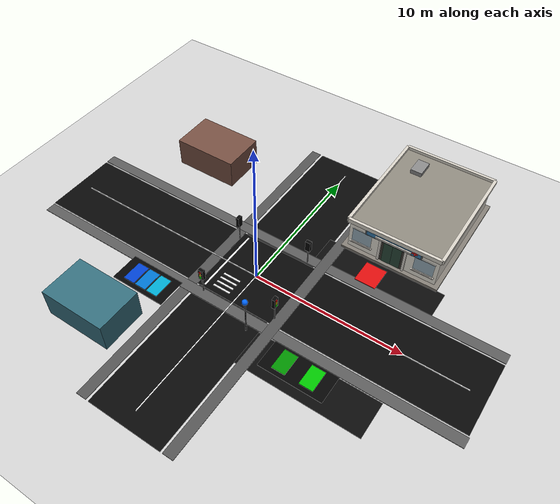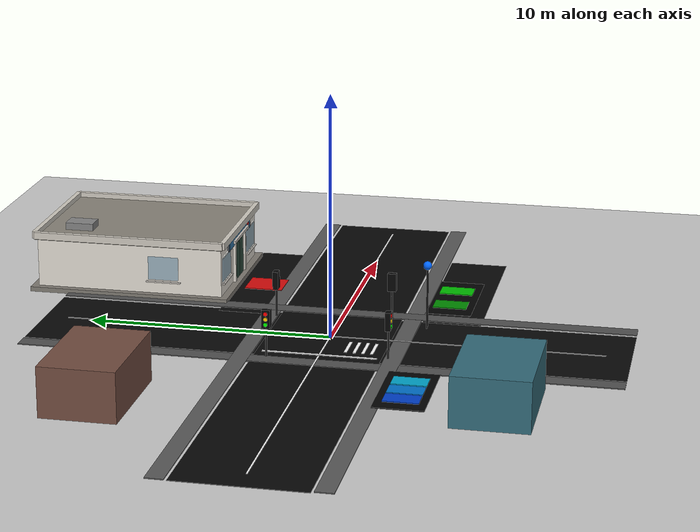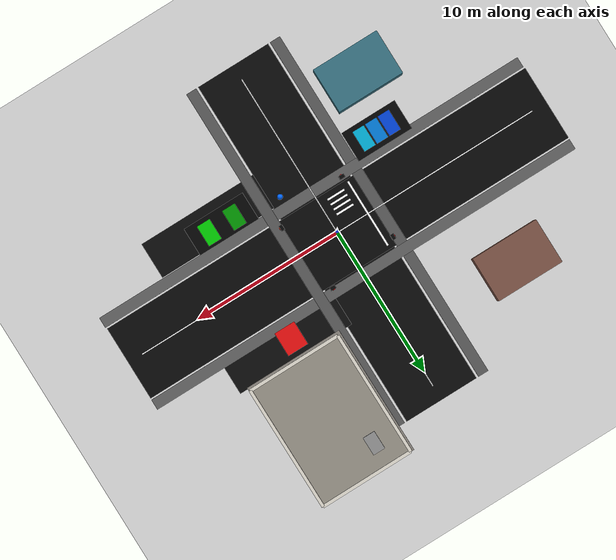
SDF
<sdf version="1.7">
 <world name="v2x_city_world">
  <light name="sun" type="directional">
   <pose>0 0 10 0 -0 0</pose>
   <diffuse>0.8 0.8 0.8 1</diffuse>
   <specular>0.2 0.2 0.2 1</specular>
   <attenuation>
    <range>1000</range>
    <constant>0.9</constant>
    <linear>0.01</linear>
    <quadratic>0.001</quadratic>
   </attenuation>
   <direction>-0.5 0.1 -0.9</direction>
   <spot><inner_angle>0</inner_angle><outer_angle>0</outer_angle><falloff>0</falloff></spot>
  </light>
  <model name="ground_plane">
   <static>1</static>
   <link name="link">
    <collision name="collision">
     <geometry><plane><normal>0 0 1</normal><size>100 100</size></plane></geometry>
     <surface><friction><ode><mu>100</mu><mu2>50</mu2></ode></friction></surface>
    </collision>
    <visual name="visual">
     <cast_shadows>0</cast_shadows>
     <geometry><plane><normal>0 0 1</normal><size>100 100</size></plane></geometry>
     <material>
      <script><uri>file://media/materials/scripts/gazebo.material</uri><name>Gazebo/Grey</name></script>
     </material>
    </visual>
   </link>
  </model>
  <model name="main_horizontal_road">
   <static>1</static>
   <pose>-0.011249 0.047151 0.022517 0 -0 0</pose>
   <link name="link">
    <visual name="road">
     <geometry><box><size>30 5 0.02</size></box></geometry>
     <material><ambient>0.025 0.025 0.025 1</ambient><diffuse>0.025 0.025 0.025 1</diffuse></material>
    </visual>
   </link>
  </model>
  <model name="main_vertical_road">
   <static>1</static>
   <pose>0 0 0.012 0 -0 0</pose>
   <link name="link">
    <visual name="road">
     <geometry><box><size>5 24 0.02</size></box></geometry>
     <material><ambient>0.03 0.03 0.03 1</ambient><diffuse>0.03 0.03 0.03 1</diffuse></material>
    </visual>
   </link>
  </model>
  <model name="office_access_road">
   <static>1</static>
   <pose>6.48916 -4.50995 0.014 0 -0 0</pose>
   <link name="link">
    <visual name="road">
     <geometry><box><size>8 2.4 0.02</size></box></geometry>
     <material><ambient>0.035 0.035 0.035 1</ambient><diffuse>0.035 0.035 0.035 1</diffuse></material>
    </visual>
   </link>
  </model>
  <model name="hospital_access_road">
   <static>1</static>
   <pose>6.2 4 0.014 0 -0 0</pose>
   <link name="link">
    <visual name="road">
     <geometry><box><size>8 2.4 0.02</size></box></geometry>
     <material><ambient>0.035 0.035 0.035 1</ambient><diffuse>0.035 0.035 0.035 1</diffuse></material>
    </visual>
   </link>
  </model>
  <model name="sidewalk_north">
   <static>1</static>
   <pose>0 3 0.035 0 -0 0</pose>
   <link name="link">
    <visual name="sidewalk">
     <geometry><box><size>30 0.7 0.04</size></box></geometry>
     <material><ambient>0.35 0.35 0.35 1</ambient><diffuse>0.35 0.35 0.35 1</diffuse></material>
    </visual>
   </link>
  </model>
  <model name="sidewalk_south">
   <static>1</static>
   <pose>0.051873 -2.90708 0.035 0 -0 0</pose>
   <link name="link">
    <visual name="sidewalk">
     <geometry><box><size>30 0.7 0.04</size></box></geometry>
     <material><ambient>0.35 0.35 0.35 1</ambient><diffuse>0.35 0.35 0.35 1</diffuse></material>
    </visual>
   </link>
  </model>
  <model name="sidewalk_east">
   <static>1</static>
   <pose>3 0 0.036 0 -0 0</pose>
   <link name="link">
    <visual name="sidewalk">
     <geometry><box><size>0.7 24 0.04</size></box></geometry>
     <material><ambient>0.32 0.32 0.32 1</ambient><diffuse>0.32 0.32 0.32 1</diffuse></material>
    </visual>
   </link>
  </model>
  <model name="sidewalk_west">
   <static>1</static>
   <pose>-3 0 0.026544 0 -0 0</pose>
   <link name="link">
    <visual name="sidewalk">
     <geometry><box><size>0.7 24 0.04</size></box></geometry>
     <material><ambient>0.32 0.32 0.32 1</ambient><diffuse>0.32 0.32 0.32 1</diffuse></material>
    </visual>
   </link>
  </model>
  <model name="horizontal_lane_marking">
   <static>1</static>
   <pose>0 0 0.055 0 -0 0</pose>
   <link name="link">
    <visual name="visual">
     <geometry><box><size>28 0.06 0.02</size></box></geometry>
     <material><ambient>1 1 1 1</ambient><diffuse>1 1 1 1</diffuse></material>
    </visual>
   </link>
  </model>
  <model name="vertical_lane_marking">
   <static>1</static>
   <pose>0 0 0.056 0 -0 0</pose>
   <link name="link">
    <visual name="visual">
     <geometry><box><size>0.06 22 0.02</size></box></geometry>
     <material><ambient>1 1 1 1</ambient><diffuse>1 1 1 1</diffuse></material>
    </visual>
   </link>
  </model>
  <model name="main_stop_line">
   <static>1</static>
   <pose>-2.2 0 0.07 0 -0 0</pose>
   <link name="link">
    <visual name="visual">
     <geometry><box><size>0.12 4.6 0.025</size></box></geometry>
     <material><ambient>1 1 1 1</ambient><diffuse>1 1 1 1</diffuse></material>
    </visual>
   </link>
  </model>
  <model name="crosswalk_south">
   <static>1</static>
   <pose>-1.15 -2 0.075 0 -0 0</pose>
   <link name="link">
    <visual name="stripe1">
     <geometry><box><size>1.2 0.12 0.025</size></box></geometry>
     <material><ambient>1 1 1 1</ambient><diffuse>1 1 1 1</diffuse></material>
    </visual>
    <visual name="stripe2">
     <pose>0 0.35 0 0 -0 0</pose>
     <geometry><box><size>1.2 0.12 0.025</size></box></geometry>
     <material><ambient>1 1 1 1</ambient><diffuse>1 1 1 1</diffuse></material>
    </visual>
    <visual name="stripe3">
     <pose>0 0.7 0 0 -0 0</pose>
     <geometry><box><size>1.2 0.12 0.025</size></box></geometry>
     <material><ambient>1 1 1 1</ambient><diffuse>1 1 1 1</diffuse></material>
    </visual>
    <visual name="stripe4">
     <pose>0 1.05 0 0 -0 0</pose>
     <geometry><box><size>1.2 0.12 0.025</size></box></geometry>
     <material><ambient>1 1 1 1</ambient><diffuse>1 1 1 1</diffuse></material>
    </visual>
   </link>
  </model>
  <model name="hospital_complex">
   <static>1</static>
   <pose>6.34604 8.76438 1.13843 0 -0 0</pose>
   <link name="link">
    <visual name="main">
     <geometry><box><size>5.5 3.2 2.5</size></box></geometry>
     <material><ambient>0.82 0.86 0.9 1</ambient><diffuse>0.82 0.86 0.9 1</diffuse></material>
    </visual>
    <visual name="entrance">
     <pose>-1.2 -1.65 -0.45 0 -0 0</pose>
     <geometry><box><size>1.3 0.25 0.7</size></box></geometry>
     <material><ambient>0.15 0.35 0.85 1</ambient><diffuse>0.15 0.35 0.85 1</diffuse></material>
    </visual>
    <visual name="cross_vertical">
     <pose>0 -1.65 0.65 0 -0 0</pose>
     <geometry><box><size>0.3 0.08 1.1</size></box></geometry>
     <material><ambient>1 0 0 1</ambient><diffuse>1 0 0 1</diffuse></material>
    </visual>
    <visual name="cross_horizontal">
     <pose>0 -1.7 0.65 0 -0 0</pose>
     <geometry><box><size>1.1 0.08 0.3</size></box></geometry>
     <material><ambient>1 0 0 1</ambient><diffuse>1 0 0 1</diffuse></material>
    </visual>
   </link>
  </model>
  <model name="residential_block">
   <static>1</static>
   <pose>-8.3 7.1778 1 0 -0 0</pose>
   <link name="link">
    <visual name="main">
     <geometry><box><size>4.5 3 2</size></box></geometry>
     <material><ambient>0.45 0.3 0.25 1</ambient><diffuse>0.45 0.3 0.25 1</diffuse></material>
    </visual>
   </link>
  </model>
  <model name="commercial_block">
   <static>1</static>
   <pose>-6.17553 -7.5559 1 0 -0 0</pose>
   <link name="link">
    <visual name="main">
     <geometry><box><size>4.5 3 2</size></box></geometry>
     <material><ambient>0.2 0.42 0.48 1</ambient><diffuse>0.2 0.42 0.48 1</diffuse></material>
    </visual>
   </link>
  </model>
  <model name="office_parking_zone_O1_O2">
   <static>1</static>
   <pose>5.71745 -4.12842 0.00947 0 -0 0</pose>
   <link name="link">
    <visual name="base">
     <geometry><box><size>4.2 2 0.04</size></box></geometry>
     <material><ambient>0.01 0.01 0.01 1</ambient><diffuse>0.01 0.01 0.01 1</diffuse></material>
    </visual>
    <visual name="slot_o1">
     <pose>-0.9 0 0.04 0 -0 0</pose>
     <geometry><box><size>0.9 1.4 0.04</size></box></geometry>
     <material><ambient>0 0.55 0 1</ambient><diffuse>0 0.55 0 1</diffuse></material>
    </visual>
    <visual name="slot_o2">
     <pose>0.9 0 0.04 0 -0 0</pose>
     <geometry><box><size>0.9 1.4 0.04</size></box></geometry>
     <material><ambient>0 0.75 0 1</ambient><diffuse>0 0.75 0 1</diffuse></material>
    </visual>
   </link>
  </model>
  <model name="hospital_bay_H1">
   <static>1</static>
   <pose>5.8 4 0.07 0 -0 0</pose>
   <link name="link">
    <visual name="base">
     <geometry><box><size>1.4 1.6 0.04</size></box></geometry>
     <material><ambient>0.85 0.05 0.05 1</ambient><diffuse>0.85 0.05 0.05 1</diffuse></material>
    </visual>
   </link>
  </model>
  <model name="commercial_parking_lot">
   <static>1</static>
   <pose>-5.31351 -4 0.07 0 -0 0</pose>
   <link name="link">
    <visual name="base">
     <geometry><box><size>3.8 2 0.04</size></box></geometry>
     <material><ambient>0.01 0.01 0.01 1</ambient><diffuse>0.01 0.01 0.01 1</diffuse></material>
    </visual>
    <visual name="slot1">
     <pose>-0.9 0 0.04 0 -0 0</pose>
     <geometry><box><size>0.8 1.4 0.04</size></box></geometry>
     <material><ambient>0 0.25 0.8 1</ambient><diffuse>0 0.25 0.8 1</diffuse></material>
    </visual>
    <visual name="slot2">
     <pose>0 0 0.04 0 -0 0</pose>
     <geometry><box><size>0.8 1.4 0.04</size></box></geometry>
     <material><ambient>0 0.45 0.8 1</ambient><diffuse>0 0.45 0.8 1</diffuse></material>
    </visual>
    <visual name="slot3">
     <pose>0.9 0 0.04 0 -0 0</pose>
     <geometry><box><size>0.8 1.4 0.04</size></box></geometry>
     <material><ambient>0 0.65 0.8 1</ambient><diffuse>0 0.65 0.8 1</diffuse></material>
    </visual>
   </link>
  </model>
  <model name="traffic_light_south">
   <static>1</static>
   <pose>-2 -2.7 0 0 -0 0</pose>
   <link name="link">
    <visual name="pole">
     <pose>0 0 0.8 0 -0 0</pose>
     <geometry><cylinder><radius>0.04</radius><length>1.6</length></cylinder></geometry>
     <material><ambient>0.1 0.1 0.1 1</ambient><diffuse>0.1 0.1 0.1 1</diffuse></material>
    </visual>
    <visual name="box">
     <pose>0 0 1.6 0 -0 0</pose>
     <geometry><box><size>0.35 0.22 0.75</size></box></geometry>
     <material><ambient>0.02 0.02 0.02 1</ambient><diffuse>0.02 0.02 0.02 1</diffuse></material>
    </visual>
    <visual name="red">
     <pose>0 -0.13 1.82 1.5707 -0 0</pose>
     <geometry><cylinder><radius>0.08</radius><length>0.03</length></cylinder></geometry>
     <material><ambient>1 0 0 1</ambient><diffuse>1 0 0 1</diffuse></material>
    </visual>
    <visual name="yellow">
     <pose>0 -0.13 1.6 1.5707 -0 0</pose>
     <geometry><cylinder><radius>0.08</radius><length>0.03</length></cylinder></geometry>
     <material><ambient>1 0.8 0 1</ambient><diffuse>1 0.8 0 1</diffuse></material>
    </visual>
    <visual name="green">
     <pose>0 -0.13 1.38 1.5707 -0 0</pose>
     <geometry><cylinder><radius>0.08</radius><length>0.03</length></cylinder></geometry>
     <material><ambient>0 1 0 1</ambient><diffuse>0 1 0 1</diffuse></material>
    </visual>
   </link>
  </model>
  <model name="traffic_light_north">
   <static>1</static>
   <pose>2 2.7 0 0 -0 3.1415</pose>
   <link name="link">
    <visual name="pole">
     <pose>0 0 0.8 0 -0 0</pose>
     <geometry><cylinder><radius>0.04</radius><length>1.6</length></cylinder></geometry>
     <material><ambient>0.1 0.1 0.1 1</ambient><diffuse>0.1 0.1 0.1 1</diffuse></material>
    </visual>
    <visual name="box">
     <pose>0 0 1.6 0 -0 0</pose>
     <geometry><box><size>0.35 0.22 0.75</size></box></geometry>
     <material><ambient>0.02 0.02 0.02 1</ambient><diffuse>0.02 0.02 0.02 1</diffuse></material>
    </visual>
    <visual name="red">
     <pose>0 -0.13 1.82 1.5707 -0 0</pose>
     <geometry><cylinder><radius>0.08</radius><length>0.03</length></cylinder></geometry>
     <material><ambient>1 0 0 1</ambient><diffuse>1 0 0 1</diffuse></material>
    </visual>
    <visual name="yellow">
     <pose>0 -0.13 1.6 1.5707 -0 0</pose>
     <geometry><cylinder><radius>0.08</radius><length>0.03</length></cylinder></geometry>
     <material><ambient>1 0.8 0 1</ambient><diffuse>1 0.8 0 1</diffuse></material>
    </visual>
    <visual name="green">
     <pose>0 -0.13 1.38 1.5707 -0 0</pose>
     <geometry><cylinder><radius>0.08</radius><length>0.03</length></cylinder></geometry>
     <material><ambient>0 1 0 1</ambient><diffuse>0 1 0 1</diffuse></material>
    </visual>
   </link>
  </model>
  <model name="traffic_light_east">
   <static>1</static>
   <pose>2.7 -2 0 0 -0 1.5707</pose>
   <link name="link">
    <visual name="pole">
     <pose>0 0 0.8 0 -0 0</pose>
     <geometry><cylinder><radius>0.04</radius><length>1.6</length></cylinder></geometry>
     <material><ambient>0.1 0.1 0.1 1</ambient><diffuse>0.1 0.1 0.1 1</diffuse></material>
    </visual>
    <visual name="box">
     <pose>0 0 1.6 0 -0 0</pose>
     <geometry><box><size>0.35 0.22 0.75</size></box></geometry>
     <material><ambient>0.02 0.02 0.02 1</ambient><diffuse>0.02 0.02 0.02 1</diffuse></material>
    </visual>
    <visual name="red">
     <pose>0 -0.13 1.82 1.5707 -0 0</pose>
     <geometry><cylinder><radius>0.08</radius><length>0.03</length></cylinder></geometry>
     <material><ambient>1 0 0 1</ambient><diffuse>1 0 0 1</diffuse></material>
    </visual>
    <visual name="yellow">
     <pose>0 -0.13 1.6 1.5707 -0 0</pose>
     <geometry><cylinder><radius>0.08</radius><length>0.03</length></cylinder></geometry>
     <material><ambient>1 0.8 0 1</ambient><diffuse>1 0.8 0 1</diffuse></material>
    </visual>
    <visual name="green">
     <pose>0 -0.13 1.38 1.5707 -0 0</pose>
     <geometry><cylinder><radius>0.08</radius><length>0.03</length></cylinder></geometry>
     <material><ambient>0 1 0 1</ambient><diffuse>0 1 0 1</diffuse></material>
    </visual>
   </link>
  </model>
  <model name="traffic_light_west">
   <static>1</static>
   <pose>-2.7 2 0 0 0 -1.5707</pose>
   <link name="link">
    <visual name="pole">
     <pose>0 0 0.8 0 -0 0</pose>
     <geometry><cylinder><radius>0.04</radius><length>1.6</length></cylinder></geometry>
     <material><ambient>0.1 0.1 0.1 1</ambient><diffuse>0.1 0.1 0.1 1</diffuse></material>
    </visual>
    <visual name="box">
     <pose>0 0 1.6 0 -0 0</pose>
     <geometry><box><size>0.35 0.22 0.75</size></box></geometry>
     <material><ambient>0.02 0.02 0.02 1</ambient><diffuse>0.02 0.02 0.02 1</diffuse></material>
    </visual>
    <visual name="red">
     <pose>0 -0.13 1.82 1.5707 -0 0</pose>
     <geometry><cylinder><radius>0.08</radius><length>0.03</length></cylinder></geometry>
     <material><ambient>1 0 0 1</ambient><diffuse>1 0 0 1</diffuse></material>
    </visual>
    <visual name="yellow">
     <pose>0 -0.13 1.6 1.5707 -0 0</pose>
     <geometry><cylinder><radius>0.08</radius><length>0.03</length></cylinder></geometry>
     <material><ambient>1 0.8 0 1</ambient><diffuse>1 0.8 0 1</diffuse></material>
    </visual>
    <visual name="green">
     <pose>0 -0.13 1.38 1.5707 -0 0</pose>
     <geometry><cylinder><radius>0.08</radius><length>0.03</length></cylinder></geometry>
     <material><ambient>0 1 0 1</ambient><diffuse>0 1 0 1</diffuse></material>
    </visual>
   </link>
  </model>
  <model name="v2x_rsu_tower">
   <static>1</static>
   <pose>1.8 -3.6 0 0 -0 0</pose>
   <link name="link">
    <visual name="pole">
     <pose>0 0 1.3 0 -0 0</pose>
     <geometry><cylinder><radius>0.04</radius><length>2.6</length></cylinder></geometry>
     <material><ambient>0.05 0.05 0.05 1</ambient><diffuse>0.05 0.05 0.05 1</diffuse></material>
    </visual>
    <visual name="antenna">
     <pose>0 0 2.7 0 -0 0</pose>
     <geometry><sphere><radius>0.18</radius></sphere></geometry>
     <material><ambient>0 0.4 1 1</ambient><diffuse>0 0.4 1 1</diffuse></material>
    </visual>
   </link>
  </model>
  <gravity>0 0 -9.8</gravity>
  <magnetic_field>6e-06 2.3e-05 -4.2e-05</magnetic_field>
  <atmosphere type="adiabatic"/>
  <physics type="ode">
   <max_step_size>0.001</max_step_size>
   <real_time_factor>1</real_time_factor>
   <real_time_update_rate>1000</real_time_update_rate>
  </physics>
  <scene><ambient>0.4 0.4 0.4 1</ambient><background>0.7 0.7 0.7 1</background><shadows>1</shadows></scene>
  <audio><device>default</device></audio>
  <spherical_coordinates>
   <surface_model>EARTH_WGS84</surface_model>
   <latitude_deg>0</latitude_deg>
   <longitude_deg>0</longitude_deg>
   <elevation>0</elevation>
   <heading_deg>0</heading_deg>
  </spherical_coordinates>
  <model name="community_clinic">
   <static>1</static>
   <pose>6.34512 9.40188 0 0 0 -1.56653</pose>
   <link name="clinic_link">
    <visual name="foundation_visual">
     <pose>0 0 0.1 0 -0 0</pose>
     <geometry><box><size>8.6 6.6 0.2</size></box></geometry>
     <material>
      <ambient>0.45 0.43 0.4 1</ambient>
      <diffuse>0.5 0.48 0.45 1</diffuse>
      <specular>0.05 0.05 0.05 1</specular>
     </material>
    </visual>
    <collision name="foundation_collision">
     <pose>0 0 0.1 0 -0 0</pose>
     <geometry><box><size>8.6 6.6 0.2</size></box></geometry>
    </collision>
    <visual name="building_visual">
     <pose>0 0 1.2 0 -0 0</pose>
     <geometry><box><size>8 6 2.2</size></box></geometry>
     <material>
      <ambient>0.88 0.86 0.82 1</ambient>
      <diffuse>0.9 0.88 0.84 1</diffuse>
      <specular>0.04 0.04 0.04 1</specular>
     </material>
    </visual>
    <collision name="building_collision">
     <pose>0 0 1.2 0 -0 0</pose>
     <geometry><box><size>8 6 2.2</size></box></geometry>
    </collision>
    <visual name="parapet_front">
     <pose>0 3.1 2.45 0 -0 0</pose>
     <geometry><box><size>8.2 0.2 0.3</size></box></geometry>
     <material><ambient>0.8 0.78 0.74 1</ambient><diffuse>0.82 0.8 0.76 1</diffuse></material>
    </visual>
    <visual name="parapet_back">
     <pose>0 -3.1 2.45 0 -0 0</pose>
     <geometry><box><size>8.2 0.2 0.3</size></box></geometry>
     <material><ambient>0.8 0.78 0.74 1</ambient><diffuse>0.82 0.8 0.76 1</diffuse></material>
    </visual>
    <visual name="parapet_left">
     <pose>-4.1 0 2.45 0 -0 0</pose>
     <geometry><box><size>0.2 6.2 0.3</size></box></geometry>
     <material><ambient>0.8 0.78 0.74 1</ambient><diffuse>0.82 0.8 0.76 1</diffuse></material>
    </visual>
    <visual name="parapet_right">
     <pose>4.1 0 2.45 0 -0 0</pose>
     <geometry><box><size>0.2 6.2 0.3</size></box></geometry>
     <material><ambient>0.8 0.78 0.74 1</ambient><diffuse>0.82 0.8 0.76 1</diffuse></material>
    </visual>
    <visual name="roof_slab">
     <pose>0 0 2.32 0 -0 0</pose>
     <geometry><box><size>8.2 6.2 0.14</size></box></geometry>
     <material><ambient>0.52 0.5 0.46 1</ambient><diffuse>0.54 0.52 0.48 1</diffuse></material>
    </visual>
    <visual name="canopy_slab">
     <pose>3.6 0 2.05 0 -0 0</pose>
     <geometry><box><size>1.2 2.4 0.12</size></box></geometry>
     <material><ambient>0.75 0.73 0.7 1</ambient><diffuse>0.77 0.75 0.72 1</diffuse></material>
    </visual>
    <visual name="canopy_pillar_left">
     <pose>4.05 0.85 1.05 0 -0 0</pose>
     <geometry><box><size>0.15 0.15 2.1</size></box></geometry>
     <material><ambient>0.82 0.8 0.77 1</ambient><diffuse>0.84 0.82 0.79 1</diffuse></material>
    </visual>
    <visual name="canopy_pillar_right">
     <pose>4.05 -0.85 1.05 0 -0 0</pose>
     <geometry><box><size>0.15 0.15 2.1</size></box></geometry>
     <material><ambient>0.82 0.8 0.77 1</ambient><diffuse>0.84 0.82 0.79 1</diffuse></material>
    </visual>
    <visual name="door_frame">
     <pose>4.02 0 1 0 -0 0</pose>
     <geometry><box><size>0.06 1.5 2.05</size></box></geometry>
     <material><ambient>0.2 0.18 0.16 1</ambient><diffuse>0.22 0.2 0.18 1</diffuse></material>
    </visual>
    <visual name="door_left">
     <pose>4.04 0.3 0.95 0 -0 0</pose>
     <geometry><box><size>0.05 0.62 1.9</size></box></geometry>
     <material><ambient>0.14 0.26 0.2 1</ambient><diffuse>0.16 0.28 0.22 1</diffuse></material>
    </visual>
    <visual name="door_right">
     <pose>4.04 -0.3 0.95 0 -0 0</pose>
     <geometry><box><size>0.05 0.62 1.9</size></box></geometry>
     <material><ambient>0.14 0.26 0.2 1</ambient><diffuse>0.16 0.28 0.22 1</diffuse></material>
    </visual>
    <visual name="door_transom">
     <pose>4.04 0 1.97 0 -0 0</pose>
     <geometry><box><size>0.04 1.3 0.2</size></box></geometry>
     <material><ambient>0.55 0.7 0.75 0.65</ambient><diffuse>0.55 0.7 0.75 0.65</diffuse></material>
    </visual>
    <visual name="fw1_glass">
     <pose>4.02 2.1 1.3 0 -0 0</pose>
     <geometry><box><size>0.04 1.3 1</size></box></geometry>
     <material><ambient>0.42 0.6 0.72 0.55</ambient><diffuse>0.42 0.6 0.72 0.55</diffuse></material>
    </visual>
    <visual name="fw1_frame_top">
     <pose>4.04 2.1 1.86 0 -0 0</pose>
     <geometry><box><size>0.05 1.36 0.06</size></box></geometry>
     <material><ambient>0.92 0.92 0.9 1</ambient><diffuse>0.94 0.94 0.92 1</diffuse></material>
    </visual>
    <visual name="fw1_frame_bot">
     <pose>4.04 2.1 0.76 0 -0 0</pose>
     <geometry><box><size>0.05 1.36 0.06</size></box></geometry>
     <material><ambient>0.92 0.92 0.9 1</ambient><diffuse>0.94 0.94 0.92 1</diffuse></material>
    </visual>
    <visual name="fw1_sill">
     <pose>4.06 2.1 0.71 0 -0 0</pose>
     <geometry><box><size>0.12 1.5 0.05</size></box></geometry>
     <material><ambient>0.8 0.78 0.75 1</ambient><diffuse>0.82 0.8 0.77 1</diffuse></material>
    </visual>
    <visual name="fw2_glass">
     <pose>4.02 -2.1 1.3 0 -0 0</pose>
     <geometry><box><size>0.04 1.3 1</size></box></geometry>
     <material><ambient>0.42 0.6 0.72 0.55</ambient><diffuse>0.42 0.6 0.72 0.55</diffuse></material>
    </visual>
    <visual name="fw2_frame_top">
     <pose>4.04 -2.1 1.86 0 -0 0</pose>
     <geometry><box><size>0.05 1.36 0.06</size></box></geometry>
     <material><ambient>0.92 0.92 0.9 1</ambient><diffuse>0.94 0.94 0.92 1</diffuse></material>
    </visual>
    <visual name="fw2_frame_bot">
     <pose>4.04 -2.1 0.76 0 -0 0</pose>
     <geometry><box><size>0.05 1.36 0.06</size></box></geometry>
     <material><ambient>0.92 0.92 0.9 1</ambient><diffuse>0.94 0.94 0.92 1</diffuse></material>
    </visual>
    <visual name="fw2_sill">
     <pose>4.06 -2.1 0.71 0 -0 0</pose>
     <geometry><box><size>0.12 1.5 0.05</size></box></geometry>
     <material><ambient>0.8 0.78 0.75 1</ambient><diffuse>0.82 0.8 0.77 1</diffuse></material>
    </visual>
    <visual name="bw1_glass">
     <pose>1.5 -3.03 1.3 0 -0 0</pose>
     <geometry><box><size>1.3 0.04 1</size></box></geometry>
     <material><ambient>0.42 0.6 0.72 0.55</ambient><diffuse>0.42 0.6 0.72 0.55</diffuse></material>
    </visual>
    <visual name="bw1_sill">
     <pose>1.5 -3.06 0.71 0 -0 0</pose>
     <geometry><box><size>1.5 0.12 0.05</size></box></geometry>
     <material><ambient>0.8 0.78 0.75 1</ambient><diffuse>0.82 0.8 0.77 1</diffuse></material>
    </visual>
    <visual name="lw1_glass">
     <pose>-4.03 0 1.3 0 -0 0</pose>
     <geometry><box><size>0.04 1.3 1</size></box></geometry>
     <material><ambient>0.42 0.6 0.72 0.55</ambient><diffuse>0.42 0.6 0.72 0.55</diffuse></material>
    </visual>
    <visual name="lw1_sill">
     <pose>-4.06 0 0.71 0 -0 0</pose>
     <geometry><box><size>0.12 1.5 0.05</size></box></geometry>
     <material><ambient>0.8 0.78 0.75 1</ambient><diffuse>0.82 0.8 0.77 1</diffuse></material>
    </visual>
    <visual name="sign_bracket">
     <pose>4.05 0 2.1 0 -0 0</pose>
     <geometry><box><size>0.06 3.8 0.55</size></box></geometry>
     <material><ambient>0.3 0.32 0.34 1</ambient><diffuse>0.32 0.34 0.36 1</diffuse></material>
    </visual>
    <visual name="sign_face">
     <pose>4.08 0 2.1 0 -0 0</pose>
     <geometry><box><size>0.04 3.6 0.45</size></box></geometry>
     <material><ambient>0.18 0.45 0.65 1</ambient><diffuse>0.2 0.48 0.68 1</diffuse></material>
    </visual>
    <visual name="cross_h">
     <pose>4.1 1.4 2.1 0 -0 0</pose>
     <geometry><box><size>0.02 0.36 0.12</size></box></geometry>
     <material><ambient>0.85 0.1 0.1 1</ambient><diffuse>0.88 0.12 0.12 1</diffuse></material>
    </visual>
    <visual name="cross_v">
     <pose>4.1 1.4 2.1 0 -0 0</pose>
     <geometry><box><size>0.02 0.12 0.36</size></box></geometry>
     <material><ambient>0.85 0.1 0.1 1</ambient><diffuse>0.88 0.12 0.12 1</diffuse></material>
    </visual>
    <visual name="hvac_body">
     <pose>-2.5 -1.5 2.55 0 -0 0</pose>
     <geometry><box><size>1.2 0.8 0.3</size></box></geometry>
     <material><ambient>0.48 0.48 0.48 1</ambient><diffuse>0.52 0.52 0.52 1</diffuse></material>
    </visual>
    <inertial>
     <mass>5000</mass>
     <inertia><ixx>1000</ixx><ixy>0</ixy><ixz>0</ixz><iyy>1000</iyy><iyz>0</iyz><izz>1000</izz></inertia>
    </inertial>
   </link>
  </model>
 </world>
</sdf>
